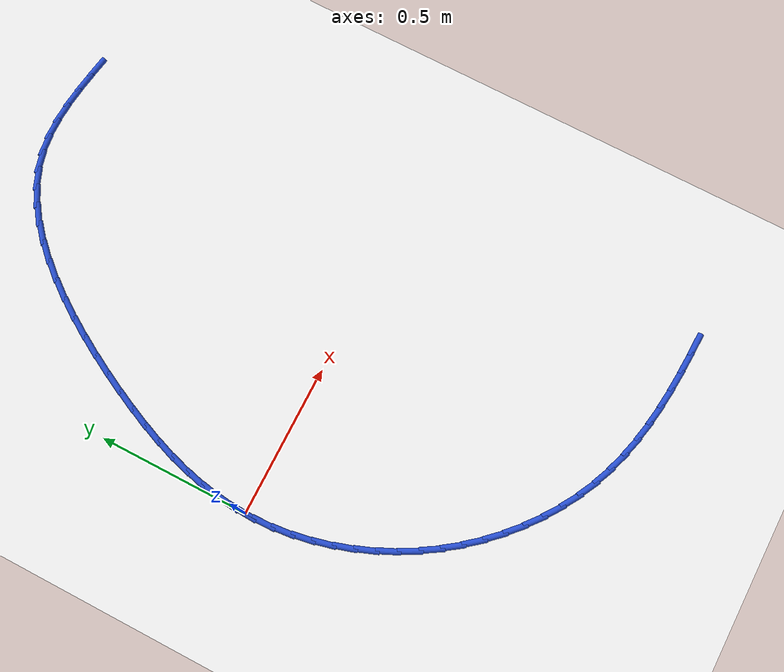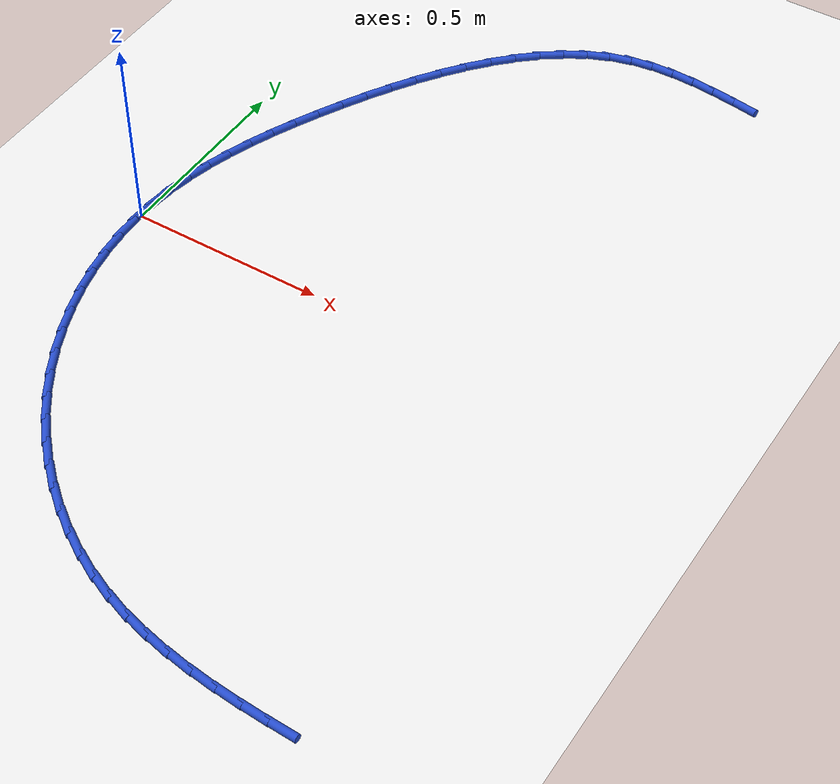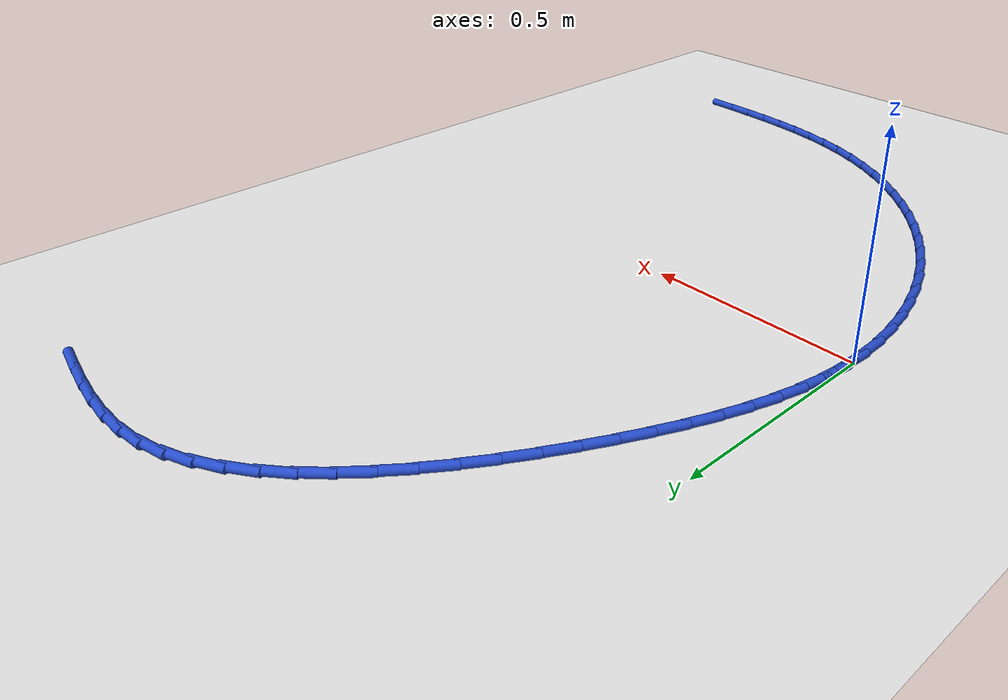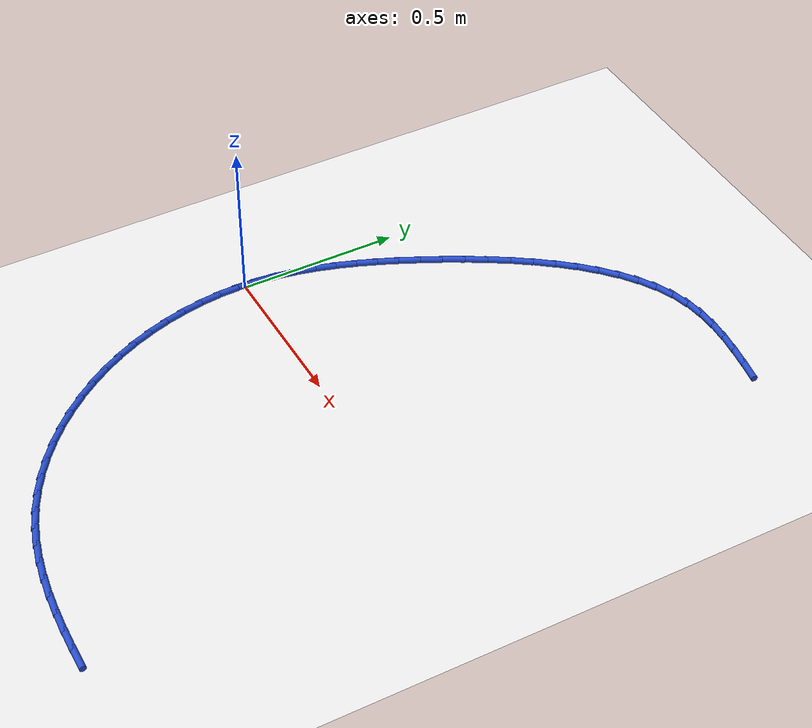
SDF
<sdf version="1.6">
 <world name="default">
  <model name="ground_plane">
   <static>1</static>
   <link name="link">
    <collision name="collision">
     <geometry><plane><normal>0 0 1</normal><size>100 100</size></plane></geometry>
     <surface><friction><ode><mu>100</mu><mu2>50</mu2></ode></friction></surface>
    </collision>
    <visual name="visual">
     <cast_shadows>0</cast_shadows>
     <geometry><plane><normal>0 0 1</normal><size>100 100</size></plane></geometry>
     <material>
      <script><uri>file://media/materials/scripts/gazebo.material</uri><name>Gazebo/WhiteGlow</name></script>
     </material>
    </visual>
   </link>
  </model>
  <model name="line">
   <link name="link_0">
    <pose>2.42861286636753e-17 -1.1102230246251565e-16 0.01 0 1.57 1.5143774613841638</pose>
    <collision name="collision">
     <geometry><cylinder><radius>0.01</radius><length>0.08</length></cylinder></geometry>
    </collision>
    <visual name="visual">
     <material>
      <script><name>Gazebo/Blue</name><uri>file://media/materials/scripts/gazebo.material</uri></script>
     </material>
     <geometry><cylinder><radius>0.01</radius><length>0.08</length></cylinder></geometry>
    </visual>
   </link>
   <link name="link_1">
    <pose>0.0035261891295364028 0.06243384937229185 0.01 0 1.57 1.4431317816425135</pose>
    <collision name="collision">
     <geometry><cylinder><radius>0.01</radius><length>0.08</length></cylinder></geometry>
    </collision>
    <visual name="visual">
     <material>
      <script><name>Gazebo/Blue</name><uri>file://media/materials/scripts/gazebo.material</uri></script>
     </material>
     <geometry><cylinder><radius>0.01</radius><length>0.08</length></cylinder></geometry>
    </visual>
   </link>
   <link name="link_2">
    <pose>0.011467102215044803 0.12429695450998848 0.01 0 1.57 1.377142619794382</pose>
    <collision name="collision">
     <geometry><cylinder><radius>0.01</radius><length>0.08</length></cylinder></geometry>
    </collision>
    <visual name="visual">
     <material>
      <script><name>Gazebo/Blue</name><uri>file://media/materials/scripts/gazebo.material</uri></script>
     </material>
     <geometry><cylinder><radius>0.01</radius><length>0.08</length></cylinder></geometry>
    </visual>
   </link>
   <link name="link_3">
    <pose>0.023512969166383353 0.18572055915234992 0.01 0 1.57 1.317178485895232</pose>
    <collision name="collision">
     <geometry><cylinder><radius>0.01</radius><length>0.08</length></cylinder></geometry>
    </collision>
    <visual name="visual">
     <material>
      <script><name>Gazebo/Blue</name><uri>file://media/materials/scripts/gazebo.material</uri></script>
     </material>
     <geometry><cylinder><radius>0.01</radius><length>0.08</length></cylinder></geometry>
    </visual>
   </link>
   <link name="link_4">
    <pose>0.039354019893410246 0.24683590703863653 0.01 0 1.57 1.2636827013544192</pose>
    <collision name="collision">
     <geometry><cylinder><radius>0.01</radius><length>0.08</length></cylinder></geometry>
    </collision>
    <visual name="visual">
     <material>
      <script><name>Gazebo/Blue</name><uri>file://media/materials/scripts/gazebo.material</uri></script>
     </material>
     <geometry><cylinder><radius>0.01</radius><length>0.08</length></cylinder></geometry>
    </visual>
   </link>
   <link name="link_5">
    <pose>0.05868048430598367 0.3077742419081085 0.01 0 1.57 1.2168229654886875</pose>
    <collision name="collision">
     <geometry><cylinder><radius>0.01</radius><length>0.08</length></cylinder></geometry>
    </collision>
    <visual name="visual">
     <material>
      <script><name>Gazebo/Blue</name><uri>file://media/materials/scripts/gazebo.material</uri></script>
     </material>
     <geometry><cylinder><radius>0.01</radius><length>0.08</length></cylinder></geometry>
    </visual>
   </link>
   <link name="link_6">
    <pose>0.0811825923139617 0.368666807500026 0.01 0 1.57 1.1765577753551717</pose>
    <collision name="collision">
     <geometry><cylinder><radius>0.01</radius><length>0.08</length></cylinder></geometry>
    </collision>
    <visual name="visual">
     <material>
      <script><name>Gazebo/Blue</name><uri>file://media/materials/scripts/gazebo.material</uri></script>
     </material>
     <geometry><cylinder><radius>0.01</radius><length>0.08</length></cylinder></geometry>
    </visual>
   </link>
   <link name="link_7">
    <pose>0.10655057382720254 0.4296448475536494 0.01 0 1.57 1.142703286602026</pose>
    <collision name="collision">
     <geometry><cylinder><radius>0.01</radius><length>0.08</length></cylinder></geometry>
    </collision>
    <visual name="visual">
     <material>
      <script><name>Gazebo/Blue</name><uri>file://media/materials/scripts/gazebo.material</uri></script>
     </material>
     <geometry><cylinder><radius>0.01</radius><length>0.08</length></cylinder></geometry>
    </visual>
   </link>
   <link name="link_8">
    <pose>0.13447465875556444 0.4908396058082388 0.01 0 1.57 1.1149803471588053</pose>
    <collision name="collision">
     <geometry><cylinder><radius>0.01</radius><length>0.08</length></cylinder></geometry>
    </collision>
    <visual name="visual">
     <material>
      <script><name>Gazebo/Blue</name><uri>file://media/materials/scripts/gazebo.material</uri></script>
     </material>
     <geometry><cylinder><radius>0.01</radius><length>0.08</length></cylinder></geometry>
    </visual>
   </link>
   <link name="link_9">
    <pose>0.16464543273444285 0.5523814098235147 0.01 0 1.57 1.0905320379613839</pose>
    <collision name="collision">
     <geometry><cylinder><radius>0.01</radius><length>0.08</length></cylinder></geometry>
    </collision>
    <visual name="visual">
     <material>
      <script><name>Gazebo/Blue</name><uri>file://media/materials/scripts/gazebo.material</uri></script>
     </material>
     <geometry><cylinder><radius>0.01</radius><length>0.08</length></cylinder></geometry>
    </visual>
   </link>
   <link name="link_10">
    <pose>0.19683916404752355 0.6141799094708603 0.01 0 1.57 1.0631304391220162</pose>
    <collision name="collision">
     <geometry><cylinder><radius>0.01</radius><length>0.08</length></cylinder></geometry>
    </collision>
    <visual name="visual">
     <material>
      <script><name>Gazebo/Blue</name><uri>file://media/materials/scripts/gazebo.material</uri></script>
     </material>
     <geometry><cylinder><radius>0.01</radius><length>0.08</length></cylinder></geometry>
    </visual>
   </link>
   <link name="link_11">
    <pose>0.23102859768158357 0.6756387242232575 0.01 0 1.57 1.0314230126092974</pose>
    <collision name="collision">
     <geometry><cylinder><radius>0.01</radius><length>0.08</length></cylinder></geometry>
    </collision>
    <visual name="visual">
     <material>
      <script><name>Gazebo/Blue</name><uri>file://media/materials/scripts/gazebo.material</uri></script>
     </material>
     <geometry><cylinder><radius>0.01</radius><length>0.08</length></cylinder></geometry>
    </visual>
   </link>
   <link name="link_12">
    <pose>0.26721390570062603 0.736090834467235 0.01 0 1.57 0.9947153359778504</pose>
    <collision name="collision">
     <geometry><cylinder><radius>0.01</radius><length>0.08</length></cylinder></geometry>
    </collision>
    <visual name="visual">
     <material>
      <script><name>Gazebo/Blue</name><uri>file://media/materials/scripts/gazebo.material</uri></script>
     </material>
     <geometry><cylinder><radius>0.01</radius><length>0.08</length></cylinder></geometry>
    </visual>
   </link>
   <link name="link_13">
    <pose>0.30539526016865415 0.7948692205893222 0.01 0 1.57 0.9521328767452754</pose>
    <collision name="collision">
     <geometry><cylinder><radius>0.01</radius><length>0.08</length></cylinder></geometry>
    </collision>
    <visual name="visual">
     <material>
      <script><name>Gazebo/Blue</name><uri>file://media/materials/scripts/gazebo.material</uri></script>
     </material>
     <geometry><cylinder><radius>0.01</radius><length>0.08</length></cylinder></geometry>
    </visual>
   </link>
   <link name="link_14">
    <pose>0.3455728331496707 0.8513068629760475 0.01 0 1.57 0.9025936174841243</pose>
    <collision name="collision">
     <geometry><cylinder><radius>0.01</radius><length>0.08</length></cylinder></geometry>
    </collision>
    <visual name="visual">
     <material>
      <script><name>Gazebo/Blue</name><uri>file://media/materials/scripts/gazebo.material</uri></script>
     </material>
     <geometry><cylinder><radius>0.01</radius><length>0.08</length></cylinder></geometry>
    </visual>
   </link>
   <link name="link_15">
    <pose>0.3877467967076793 0.9047367420139406 0.01 0 1.57 0.8447856111312442</pose>
    <collision name="collision">
     <geometry><cylinder><radius>0.01</radius><length>0.08</length></cylinder></geometry>
    </collision>
    <visual name="visual">
     <material>
      <script><name>Gazebo/Blue</name><uri>file://media/materials/scripts/gazebo.material</uri></script>
     </material>
     <geometry><cylinder><radius>0.01</radius><length>0.08</length></cylinder></geometry>
    </visual>
   </link>
   <link name="link_16">
    <pose>0.43191732290668255 0.95449183808953 0.01 0 1.57 0.7771655164641916</pose>
    <collision name="collision">
     <geometry><cylinder><radius>0.01</radius><length>0.08</length></cylinder></geometry>
    </collision>
    <visual name="visual">
     <material>
      <script><name>Gazebo/Blue</name><uri>file://media/materials/scripts/gazebo.material</uri></script>
     </material>
     <geometry><cylinder><radius>0.01</radius><length>0.08</length></cylinder></geometry>
    </visual>
   </link>
   <link name="link_17">
    <pose>0.47808458381068386 0.9999051315893447 0.01 0 1.57 0.6980090698624369</pose>
    <collision name="collision">
     <geometry><cylinder><radius>0.01</radius><length>0.08</length></cylinder></geometry>
    </collision>
    <visual name="visual">
     <material>
      <script><name>Gazebo/Blue</name><uri>file://media/materials/scripts/gazebo.material</uri></script>
     </material>
     <geometry><cylinder><radius>0.01</radius><length>0.08</length></cylinder></geometry>
    </visual>
   </link>
   <link name="link_18">
    <pose>0.5262487514836862 1.0403096028999137 0.01 0 1.57 0.6055663968386884</pose>
    <collision name="collision">
     <geometry><cylinder><radius>0.01</radius><length>0.08</length></cylinder></geometry>
    </collision>
    <visual name="visual">
     <material>
      <script><name>Gazebo/Blue</name><uri>file://media/materials/scripts/gazebo.material</uri></script>
     </material>
     <geometry><cylinder><radius>0.01</radius><length>0.08</length></cylinder></geometry>
    </visual>
   </link>
   <link name="link_19">
    <pose>0.5764099979896926 1.0750382324077659 0.01 0 1.57 0.49839580774538705</pose>
    <collision name="collision">
     <geometry><cylinder><radius>0.01</radius><length>0.08</length></cylinder></geometry>
    </collision>
    <visual name="visual">
     <material>
      <script><name>Gazebo/Blue</name><uri>file://media/materials/scripts/gazebo.material</uri></script>
     </material>
     <geometry><cylinder><radius>0.01</radius><length>0.08</length></cylinder></geometry>
    </visual>
   </link>
   <link name="link_20">
    <pose>0.6285684953927063 1.1034240004994302 0.01 0 1.57 0.3759377898442651</pose>
    <collision name="collision">
     <geometry><cylinder><radius>0.01</radius><length>0.08</length></cylinder></geometry>
    </collision>
    <visual name="visual">
     <material>
      <script><name>Gazebo/Blue</name><uri>file://media/materials/scripts/gazebo.material</uri></script>
     </material>
     <geometry><cylinder><radius>0.01</radius><length>0.08</length></cylinder></geometry>
    </visual>
   </link>
   <link name="link_21">
    <pose>0.6827244157567303 1.124799887561436 0.01 0 1.57 0.2407538592925189</pose>
    <collision name="collision">
     <geometry><cylinder><radius>0.01</radius><length>0.08</length></cylinder></geometry>
    </collision>
    <visual name="visual">
     <material>
      <script><name>Gazebo/Blue</name><uri>file://media/materials/scripts/gazebo.material</uri></script>
     </material>
     <geometry><cylinder><radius>0.01</radius><length>0.08</length></cylinder></geometry>
    </visual>
   </link>
   <link name="link_22">
    <pose>0.73887147929207 1.1385848818937758 0.01 0 1.57 0.11426295849476112</pose>
    <collision name="collision">
     <geometry><cylinder><radius>0.01</radius><length>0.08</length></cylinder></geometry>
    </collision>
    <visual name="visual">
     <material>
      <script><name>Gazebo/Blue</name><uri>file://media/materials/scripts/gazebo.material</uri></script>
     </material>
     <geometry><cylinder><radius>0.01</radius><length>0.08</length></cylinder></geometry>
    </visual>
   </link>
   <link name="link_23">
    <pose>0.7969246961638692 1.1452472340813782 0.01 0 1.57 0.011853563192779304</pose>
    <collision name="collision">
     <geometry><cylinder><radius>0.01</radius><length>0.08</length></cylinder></geometry>
    </collision>
    <visual name="visual">
     <material>
      <script><name>Gazebo/Blue</name><uri>file://media/materials/scripts/gazebo.material</uri></script>
     </material>
     <geometry><cylinder><radius>0.01</radius><length>0.08</length></cylinder></geometry>
    </visual>
   </link>
   <link name="link_24">
    <pose>0.8567464782242291 1.1459563685684235 0.01 0 1.57 -0.06600188154721691</pose>
    <collision name="collision">
     <geometry><cylinder><radius>0.01</radius><length>0.08</length></cylinder></geometry>
    </collision>
    <visual name="visual">
     <material>
      <script><name>Gazebo/Blue</name><uri>file://media/materials/scripts/gazebo.material</uri></script>
     </material>
     <geometry><cylinder><radius>0.01</radius><length>0.08</length></cylinder></geometry>
    </visual>
   </link>
   <link name="link_25">
    <pose>0.918198275284397 1.141894534505036 0.01 0 1.57 -0.12095351008709938</pose>
    <collision name="collision">
     <geometry><cylinder><radius>0.01</radius><length>0.08</length></cylinder></geometry>
    </collision>
    <visual name="visual">
     <material>
      <script><name>Gazebo/Blue</name><uri>file://media/materials/scripts/gazebo.material</uri></script>
     </material>
     <geometry><cylinder><radius>0.01</radius><length>0.08</length></cylinder></geometry>
    </visual>
   </link>
   <link name="link_26">
    <pose>0.9811415371556195 1.1342439810413385 0.01 0 1.57 -0.15515988949398385</pose>
    <collision name="collision">
     <geometry><cylinder><radius>0.01</radius><length>0.08</length></cylinder></geometry>
    </collision>
    <visual name="visual">
     <material>
      <script><name>Gazebo/Blue</name><uri>file://media/materials/scripts/gazebo.material</uri></script>
     </material>
     <geometry><cylinder><radius>0.01</radius><length>0.08</length></cylinder></geometry>
    </visual>
   </link>
   <link name="link_27">
    <pose>1.0454377136491448 1.124186957327456 0.01 0 1.57 -0.17053247013457498</pose>
    <collision name="collision">
     <geometry><cylinder><radius>0.01</radius><length>0.08</length></cylinder></geometry>
    </collision>
    <visual name="visual">
     <material>
      <script><name>Gazebo/Blue</name><uri>file://media/materials/scripts/gazebo.material</uri></script>
     </material>
     <geometry><cylinder><radius>0.01</radius><length>0.08</length></cylinder></geometry>
    </visual>
   </link>
   <link name="link_84">
    <pose>1.1066906370572251 -1.001442212430205 0.01 0 1.57 -0.036831383059964605</pose>
    <collision name="collision">
     <geometry><cylinder><radius>0.01</radius><length>0.08</length></cylinder></geometry>
    </collision>
    <visual name="visual">
     <material>
      <script><name>Gazebo/Blue</name><uri>file://media/materials/scripts/gazebo.material</uri></script>
     </material>
     <geometry><cylinder><radius>0.01</radius><length>0.08</length></cylinder></geometry>
    </visual>
   </link>
   <link name="link_85">
    <pose>1.0408442730956997 -0.9990159025392743 0.01 0 1.57 -0.05880230824359894</pose>
    <collision name="collision">
     <geometry><cylinder><radius>0.01</radius><length>0.08</length></cylinder></geometry>
    </collision>
    <visual name="visual">
     <material>
      <script><name>Gazebo/Blue</name><uri>file://media/materials/scripts/gazebo.material</uri></script>
     </material>
     <geometry><cylinder><radius>0.01</radius><length>0.08</length></cylinder></geometry>
    </visual>
   </link>
   <link name="link_86">
    <pose>0.9758140558885698 -0.9951875622123826 0.01 0 1.57 -0.08797500781554397</pose>
    <collision name="collision">
     <geometry><cylinder><radius>0.01</radius><length>0.08</length></cylinder></geometry>
    </collision>
    <visual name="visual">
     <material>
      <script><name>Gazebo/Blue</name><uri>file://media/materials/scripts/gazebo.material</uri></script>
     </material>
     <geometry><cylinder><radius>0.01</radius><length>0.08</length></cylinder></geometry>
    </visual>
   </link>
   <link name="link_87">
    <pose>0.9116680925805908 -0.989529716560896 0.01 0 1.57 -0.12459844829979817</pose>
    <collision name="collision">
     <geometry><cylinder><radius>0.01</radius><length>0.08</length></cylinder></geometry>
    </collision>
    <visual name="visual">
     <material>
      <script><name>Gazebo/Blue</name><uri>file://media/materials/scripts/gazebo.material</uri></script>
     </material>
     <geometry><cylinder><radius>0.01</radius><length>0.08</length></cylinder></geometry>
    </visual>
   </link>
   <link name="link_88">
    <pose>0.8484744903165214 -0.9816148906961819 0.01 0 1.57 -0.16885671699225416</pose>
    <collision name="collision">
     <geometry><cylinder><radius>0.01</radius><length>0.08</length></cylinder></geometry>
    </collision>
    <visual name="visual">
     <material>
      <script><name>Gazebo/Blue</name><uri>file://media/materials/scripts/gazebo.material</uri></script>
     </material>
     <geometry><cylinder><radius>0.01</radius><length>0.08</length></cylinder></geometry>
    </visual>
   </link>
   <link name="link_89">
    <pose>0.7863013562411176 -0.9710156097296073 0.01 0 1.57 -0.22080306676454572</pose>
    <collision name="collision">
     <geometry><cylinder><radius>0.01</radius><length>0.08</length></cylinder></geometry>
    </collision>
    <visual name="visual">
     <material>
      <script><name>Gazebo/Blue</name><uri>file://media/materials/scripts/gazebo.material</uri></script>
     </material>
     <geometry><cylinder><radius>0.01</radius><length>0.08</length></cylinder></geometry>
    </visual>
   </link>
   <link name="link_90">
    <pose>0.7252167974991379 -0.9573043987725388 0.01 0 1.57 -0.28027887562600196</pose>
    <collision name="collision">
     <geometry><cylinder><radius>0.01</radius><length>0.08</length></cylinder></geometry>
    </collision>
    <visual name="visual">
     <material>
      <script><name>Gazebo/Blue</name><uri>file://media/materials/scripts/gazebo.material</uri></script>
     </material>
     <geometry><cylinder><radius>0.01</radius><length>0.08</length></cylinder></geometry>
    </visual>
   </link>
   <link name="link_91">
    <pose>0.6652889212353378 -0.9400537829363436 0.01 0 1.57 -0.3468275523330031</pose>
    <collision name="collision">
     <geometry><cylinder><radius>0.01</radius><length>0.08</length></cylinder></geometry>
    </collision>
    <visual name="visual">
     <material>
      <script><name>Gazebo/Blue</name><uri>file://media/materials/scripts/gazebo.material</uri></script>
     </material>
     <geometry><cylinder><radius>0.01</radius><length>0.08</length></cylinder></geometry>
    </visual>
   </link>
   <link name="link_92">
    <pose>0.6065858345944768 -0.9188362873323891 0.01 0 1.57 -0.4192832390986937</pose>
    <collision name="collision">
     <geometry><cylinder><radius>0.01</radius><length>0.08</length></cylinder></geometry>
    </collision>
    <visual name="visual">
     <material>
      <script><name>Gazebo/Blue</name><uri>file://media/materials/scripts/gazebo.material</uri></script>
     </material>
     <geometry><cylinder><radius>0.01</radius><length>0.08</length></cylinder></geometry>
    </visual>
   </link>
   <link name="link_93">
    <pose>0.5491834369275259 -0.8932512856403744 0.01 0 1.57 -0.4921552676956499</pose>
    <collision name="collision">
     <geometry><cylinder><radius>0.01</radius><length>0.08</length></cylinder></geometry>
    </collision>
    <visual name="visual">
     <material>
      <script><name>Gazebo/Blue</name><uri>file://media/materials/scripts/gazebo.material</uri></script>
     </material>
     <geometry><cylinder><radius>0.01</radius><length>0.08</length></cylinder></geometry>
    </visual>
   </link>
   <link name="link_94">
    <pose>0.4932656730391375 -0.8632704293860417 0.01 0 1.57 -0.5622610433892719</pose>
    <collision name="collision">
     <geometry><cylinder><radius>0.01</radius><length>0.08</length></cylinder></geometry>
    </collision>
    <visual name="visual">
     <material>
      <script><name>Gazebo/Blue</name><uri>file://media/materials/scripts/gazebo.material</uri></script>
     </material>
     <geometry><cylinder><radius>0.01</radius><length>0.08</length></cylinder></geometry>
    </visual>
   </link>
   <link name="link_95">
    <pose>0.43909549491860894 -0.8291375946406534 0.01 0 1.57 -0.6300709768258718</pose>
    <collision name="collision">
     <geometry><cylinder><radius>0.01</radius><length>0.08</length></cylinder></geometry>
    </collision>
    <visual name="visual">
     <material>
      <script><name>Gazebo/Blue</name><uri>file://media/materials/scripts/gazebo.material</uri></script>
     </material>
     <geometry><cylinder><radius>0.01</radius><length>0.08</length></cylinder></geometry>
    </visual>
   </link>
   <link name="link_96">
    <pose>0.386937660145885 -0.7911028787589532 0.01 0 1.57 -0.6961471878942825</pose>
    <collision name="collision">
     <geometry><cylinder><radius>0.01</radius><length>0.08</length></cylinder></geometry>
    </collision>
    <visual name="visual">
     <material>
      <script><name>Gazebo/Blue</name><uri>file://media/materials/scripts/gazebo.material</uri></script>
     </material>
     <geometry><cylinder><radius>0.01</radius><length>0.08</length></cylinder></geometry>
    </visual>
   </link>
   <link name="link_97">
    <pose>0.3370569263009086 -0.7494163790956831 0.01 0 1.57 -0.7610519978172648</pose>
    <collision name="collision">
     <geometry><cylinder><radius>0.01</radius><length>0.08</length></cylinder></geometry>
    </collision>
    <visual name="visual">
     <material>
      <script><name>Gazebo/Blue</name><uri>file://media/materials/scripts/gazebo.material</uri></script>
     </material>
     <geometry><cylinder><radius>0.01</radius><length>0.08</length></cylinder></geometry>
    </visual>
   </link>
   <link name="link_98">
    <pose>0.2897180509636228 -0.7043281930055857 0.01 0 1.57 -0.8253406317109429</pose>
    <collision name="collision">
     <geometry><cylinder><radius>0.01</radius><length>0.08</length></cylinder></geometry>
    </collision>
    <visual name="visual">
     <material>
      <script><name>Gazebo/Blue</name><uri>file://media/materials/scripts/gazebo.material</uri></script>
     </material>
     <geometry><cylinder><radius>0.01</radius><length>0.08</length></cylinder></geometry>
    </visual>
   </link>
   <link name="link_99">
    <pose>0.2451857917139723 -0.6560884178434047 0.01 0 1.57 -0.8895571693297785</pose>
    <collision name="collision">
     <geometry><cylinder><radius>0.01</radius><length>0.08</length></cylinder></geometry>
    </collision>
    <visual name="visual">
     <material>
      <script><name>Gazebo/Blue</name><uri>file://media/materials/scripts/gazebo.material</uri></script>
     </material>
     <geometry><cylinder><radius>0.01</radius><length>0.08</length></cylinder></geometry>
    </visual>
   </link>
   <link name="link_100">
    <pose>0.20372490613189956 -0.6049471509638815 0.01 0 1.57 -0.9542318163278153</pose>
    <collision name="collision">
     <geometry><cylinder><radius>0.01</radius><length>0.08</length></cylinder></geometry>
    </collision>
    <visual name="visual">
     <material>
      <script><name>Gazebo/Blue</name><uri>file://media/materials/scripts/gazebo.material</uri></script>
     </material>
     <geometry><cylinder><radius>0.01</radius><length>0.08</length></cylinder></geometry>
    </visual>
   </link>
   <link name="link_101">
    <pose>0.16560015179734905 -0.5511544897217605 0.01 0 1.57 -1.0196464472082254</pose>
    <collision name="collision">
     <geometry><cylinder><radius>0.01</radius><length>0.08</length></cylinder></geometry>
    </collision>
    <visual name="visual">
     <material>
      <script><name>Gazebo/Blue</name><uri>file://media/materials/scripts/gazebo.material</uri></script>
     </material>
     <geometry><cylinder><radius>0.01</radius><length>0.08</length></cylinder></geometry>
    </visual>
   </link>
   <link name="link_102">
    <pose>0.1310636379197018 -0.49496909363102576 0.01 0 1.57 -1.0846451157885741</pose>
    <collision name="collision">
     <geometry><cylinder><radius>0.01</radius><length>0.08</length></cylinder></geometry>
    </collision>
    <visual name="visual">
     <material>
      <script><name>Gazebo/Blue</name><uri>file://media/materials/scripts/gazebo.material</uri></script>
     </material>
     <geometry><cylinder><radius>0.01</radius><length>0.08</length></cylinder></geometry>
    </visual>
   </link>
   <link name="link_103">
    <pose>0.10027686579824556 -0.4367109581185463 0.01 0 1.57 -1.149021743764292</pose>
    <collision name="collision">
     <geometry><cylinder><radius>0.01</radius><length>0.08</length></cylinder></geometry>
    </collision>
    <visual name="visual">
     <material>
      <script><name>Gazebo/Blue</name><uri>file://media/materials/scripts/gazebo.material</uri></script>
     </material>
     <geometry><cylinder><radius>0.01</radius><length>0.08</length></cylinder></geometry>
    </visual>
   </link>
   <link name="link_104">
    <pose>0.07336182301094094 -0.37672682693996473 0.01 0 1.57 -1.2133083686787736</pose>
    <collision name="collision">
     <geometry><cylinder><radius>0.01</radius><length>0.08</length></cylinder></geometry>
    </collision>
    <visual name="visual">
     <material>
      <script><name>Gazebo/Blue</name><uri>file://media/materials/scripts/gazebo.material</uri></script>
     </material>
     <geometry><cylinder><radius>0.01</radius><length>0.08</length></cylinder></geometry>
    </visual>
   </link>
   <link name="link_105">
    <pose>0.05044033308806881 -0.3153635549009903 0.01 0 1.57 -1.2780542677125986</pose>
    <collision name="collision">
     <geometry><cylinder><radius>0.01</radius><length>0.08</length></cylinder></geometry>
    </collision>
    <visual name="visual">
     <material>
      <script><name>Gazebo/Blue</name><uri>file://media/materials/scripts/gazebo.material</uri></script>
     </material>
     <geometry><cylinder><radius>0.01</radius><length>0.08</length></cylinder></geometry>
    </visual>
   </link>
   <link name="link_106">
    <pose>0.03163421955990888 -0.2529679968073298 0.01 0 1.57 -1.3438204516940617</pose>
    <collision name="collision">
     <geometry><cylinder><radius>0.01</radius><length>0.08</length></cylinder></geometry>
    </collision>
    <visual name="visual">
     <material>
      <script><name>Gazebo/Blue</name><uri>file://media/materials/scripts/gazebo.material</uri></script>
     </material>
     <geometry><cylinder><radius>0.01</radius><length>0.08</length></cylinder></geometry>
    </visual>
   </link>
   <link name="link_107">
    <pose>0.01706530595674192 -0.18988700746469295 0.01 0 1.57 -1.4111763210963733</pose>
    <collision name="collision">
     <geometry><cylinder><radius>0.01</radius><length>0.08</length></cylinder></geometry>
    </collision>
    <visual name="visual">
     <material>
      <script><name>Gazebo/Blue</name><uri>file://media/materials/scripts/gazebo.material</uri></script>
     </material>
     <geometry><cylinder><radius>0.01</radius><length>0.08</length></cylinder></geometry>
    </visual>
   </link>
   <link name="link_108">
    <pose>0.006855415808847838 -0.12646744167878643 0.01 0 1.57 -1.4806935825897223</pose>
    <collision name="collision">
     <geometry><cylinder><radius>0.01</radius><length>0.08</length></cylinder></geometry>
    </collision>
    <visual name="visual">
     <material>
      <script><name>Gazebo/Blue</name><uri>file://media/materials/scripts/gazebo.material</uri></script>
     </material>
     <geometry><cylinder><radius>0.01</radius><length>0.08</length></cylinder></geometry>
    </visual>
   </link>
   <link name="link_109">
    <pose>0.0011263726465071504 -0.06305615425531987 0.01 0 1.57 -1.5529352174538105</pose>
    <collision name="collision">
     <geometry><cylinder><radius>0.01</radius><length>0.08</length></cylinder></geometry>
    </collision>
    <visual name="visual">
     <material>
      <script><name>Gazebo/Blue</name><uri>file://media/materials/scripts/gazebo.material</uri></script>
     </material>
     <geometry><cylinder><radius>0.01</radius><length>0.08</length></cylinder></geometry>
    </visual>
   </link>
   <link name="link_110">
    <pose>6.938893903907228e-18 2.7755575615628914e-17 0.01 0 1.57 1.5131556609673666</pose>
    <collision name="collision">
     <geometry><cylinder><radius>0.01</radius><length>0.08</length></cylinder></geometry>
    </collision>
    <visual name="visual">
     <material>
      <script><name>Gazebo/Blue</name><uri>file://media/materials/scripts/gazebo.material</uri></script>
     </material>
     <geometry><cylinder><radius>0.01</radius><length>0.08</length></cylinder></geometry>
    </visual>
   </link>
   <link name="link_111">
    <pose>0.0035981213996067185 0.06235416628146357 0.01 0 1.57 1.513155660967367</pose>
    <collision name="collision">
     <geometry><cylinder><radius>0.01</radius><length>0.08</length></cylinder></geometry>
    </collision>
    <visual name="visual">
     <material>
      <script><name>Gazebo/Blue</name><uri>file://media/materials/scripts/gazebo.material</uri></script>
     </material>
     <geometry><cylinder><radius>0.01</radius><length>0.08</length></cylinder></geometry>
    </visual>
   </link>
  </model>
 </world>
</sdf>
